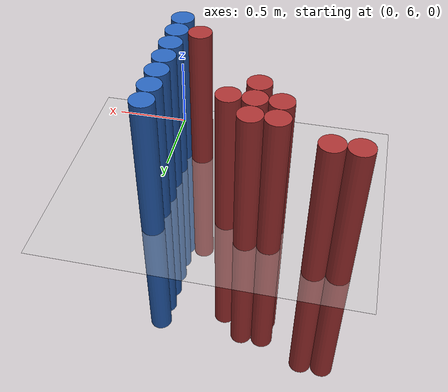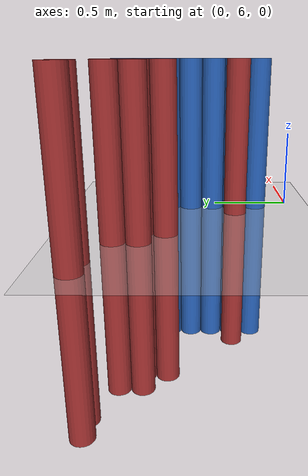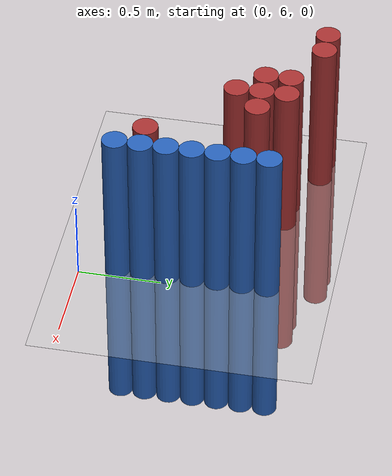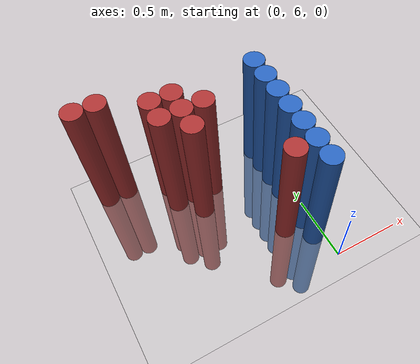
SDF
<sdf version="1.6">
 <world name="default">
  <model name="ground_plane">
   <static>1</static>
   <link name="link">
    <collision name="collision">
     <geometry><plane><normal>0 0 1</normal><size>100 100</size></plane></geometry>
     <surface><friction><ode><mu>100</mu><mu2>50</mu2></ode></friction></surface>
    </collision>
    <visual name="visual">
     <cast_shadows>0</cast_shadows>
     <geometry><plane><normal>0 0 1</normal><size>100 100</size></plane></geometry>
     <material>
      <script><uri>file://media/materials/scripts/gazebo.material</uri><name>Gazebo/Grey</name></script>
     </material>
    </visual>
   </link>
  </model>
  <model name="unit_cylinder_179">
   <static>1</static>
   <pose>-1.275000 7.275000 0.000000 0.000000 0.000000 0.000000</pose>
   <link name="link">
    <inertial>
     <mass>1</mass>
     <inertia><ixx>0.145833</ixx><ixy>0</ixy><ixz>0</ixz><iyy>0.145833</iyy><iyz>0</iyz><izz>0.125</izz></inertia>
    </inertial>
    <collision name="collision">
     <geometry><cylinder><radius>0.075000</radius><length>2</length></cylinder></geometry>
    </collision>
    <visual name="visual">
     <geometry><cylinder><radius>0.075000</radius><length>2</length></cylinder></geometry>
     <material>
      <ambient>0.648000 0.192000 0.192000 1</ambient>
      <diffuse>0.648000 0.192000 0.192000 1</diffuse>
     </material>
     <material>
      <script><name>Gazebo/Grey</name><uri>file://media/materials/scripts/gazebo.material</uri></script>
     </material>
    </visual>
   </link>
  </model>
  <model name="unit_cylinder_184">
   <static>1</static>
   <pose>-1.125000 7.275000 0.000000 0.000000 0.000000 0.000000</pose>
   <link name="link">
    <inertial>
     <mass>1</mass>
     <inertia><ixx>0.145833</ixx><ixy>0</ixy><ixz>0</ixz><iyy>0.145833</iyy><iyz>0</iyz><izz>0.125</izz></inertia>
    </inertial>
    <collision name="collision">
     <geometry><cylinder><radius>0.075000</radius><length>2</length></cylinder></geometry>
    </collision>
    <visual name="visual">
     <geometry><cylinder><radius>0.075000</radius><length>2</length></cylinder></geometry>
     <material>
      <ambient>0.648000 0.192000 0.192000 1</ambient>
      <diffuse>0.648000 0.192000 0.192000 1</diffuse>
     </material>
     <material>
      <script><name>Gazebo/Grey</name><uri>file://media/materials/scripts/gazebo.material</uri></script>
     </material>
    </visual>
   </link>
  </model>
  <model name="unit_cylinder_189">
   <static>1</static>
   <pose>-0.825000 6.975000 0.000000 0.000000 0.000000 0.000000</pose>
   <link name="link">
    <inertial>
     <mass>1</mass>
     <inertia><ixx>0.145833</ixx><ixy>0</ixy><ixz>0</ixz><iyy>0.145833</iyy><iyz>0</iyz><izz>0.125</izz></inertia>
    </inertial>
    <collision name="collision">
     <geometry><cylinder><radius>0.075000</radius><length>2</length></cylinder></geometry>
    </collision>
    <visual name="visual">
     <geometry><cylinder><radius>0.075000</radius><length>2</length></cylinder></geometry>
     <material>
      <ambient>0.648000 0.192000 0.192000 1</ambient>
      <diffuse>0.648000 0.192000 0.192000 1</diffuse>
     </material>
     <material>
      <script><name>Gazebo/Grey</name><uri>file://media/materials/scripts/gazebo.material</uri></script>
     </material>
    </visual>
   </link>
  </model>
  <model name="unit_cylinder_190">
   <static>1</static>
   <pose>-0.825000 7.125000 0.000000 0.000000 0.000000 0.000000</pose>
   <link name="link">
    <inertial>
     <mass>1</mass>
     <inertia><ixx>0.145833</ixx><ixy>0</ixy><ixz>0</ixz><iyy>0.145833</iyy><iyz>0</iyz><izz>0.125</izz></inertia>
    </inertial>
    <collision name="collision">
     <geometry><cylinder><radius>0.075000</radius><length>2</length></cylinder></geometry>
    </collision>
    <visual name="visual">
     <geometry><cylinder><radius>0.075000</radius><length>2</length></cylinder></geometry>
     <material>
      <ambient>0.648000 0.192000 0.192000 1</ambient>
      <diffuse>0.648000 0.192000 0.192000 1</diffuse>
     </material>
     <material>
      <script><name>Gazebo/Grey</name><uri>file://media/materials/scripts/gazebo.material</uri></script>
     </material>
    </visual>
   </link>
  </model>
  <model name="unit_cylinder_191">
   <static>1</static>
   <pose>-0.675000 6.825000 0.000000 0.000000 0.000000 0.000000</pose>
   <link name="link">
    <inertial>
     <mass>1</mass>
     <inertia><ixx>0.145833</ixx><ixy>0</ixy><ixz>0</ixz><iyy>0.145833</iyy><iyz>0</iyz><izz>0.125</izz></inertia>
    </inertial>
    <collision name="collision">
     <geometry><cylinder><radius>0.075000</radius><length>2</length></cylinder></geometry>
    </collision>
    <visual name="visual">
     <geometry><cylinder><radius>0.075000</radius><length>2</length></cylinder></geometry>
     <material>
      <ambient>0.648000 0.192000 0.192000 1</ambient>
      <diffuse>0.648000 0.192000 0.192000 1</diffuse>
     </material>
     <material>
      <script><name>Gazebo/Grey</name><uri>file://media/materials/scripts/gazebo.material</uri></script>
     </material>
    </visual>
   </link>
  </model>
  <model name="unit_cylinder_192">
   <static>1</static>
   <pose>-0.675000 6.975000 0.000000 0.000000 0.000000 0.000000</pose>
   <link name="link">
    <inertial>
     <mass>1</mass>
     <inertia><ixx>0.145833</ixx><ixy>0</ixy><ixz>0</ixz><iyy>0.145833</iyy><iyz>0</iyz><izz>0.125</izz></inertia>
    </inertial>
    <collision name="collision">
     <geometry><cylinder><radius>0.075000</radius><length>2</length></cylinder></geometry>
    </collision>
    <visual name="visual">
     <geometry><cylinder><radius>0.075000</radius><length>2</length></cylinder></geometry>
     <material>
      <ambient>0.648000 0.192000 0.192000 1</ambient>
      <diffuse>0.648000 0.192000 0.192000 1</diffuse>
     </material>
     <material>
      <script><name>Gazebo/Grey</name><uri>file://media/materials/scripts/gazebo.material</uri></script>
     </material>
    </visual>
   </link>
  </model>
  <model name="unit_cylinder_193">
   <static>1</static>
   <pose>-0.675000 7.125000 0.000000 0.000000 0.000000 0.000000</pose>
   <link name="link">
    <inertial>
     <mass>1</mass>
     <inertia><ixx>0.145833</ixx><ixy>0</ixy><ixz>0</ixz><iyy>0.145833</iyy><iyz>0</iyz><izz>0.125</izz></inertia>
    </inertial>
    <collision name="collision">
     <geometry><cylinder><radius>0.075000</radius><length>2</length></cylinder></geometry>
    </collision>
    <visual name="visual">
     <geometry><cylinder><radius>0.075000</radius><length>2</length></cylinder></geometry>
     <material>
      <ambient>0.648000 0.192000 0.192000 1</ambient>
      <diffuse>0.648000 0.192000 0.192000 1</diffuse>
     </material>
     <material>
      <script><name>Gazebo/Grey</name><uri>file://media/materials/scripts/gazebo.material</uri></script>
     </material>
    </visual>
   </link>
  </model>
  <model name="unit_cylinder_201">
   <static>1</static>
   <pose>-0.525000 6.975000 0.000000 0.000000 0.000000 0.000000</pose>
   <link name="link">
    <inertial>
     <mass>1</mass>
     <inertia><ixx>0.145833</ixx><ixy>0</ixy><ixz>0</ixz><iyy>0.145833</iyy><iyz>0</iyz><izz>0.125</izz></inertia>
    </inertial>
    <collision name="collision">
     <geometry><cylinder><radius>0.075000</radius><length>2</length></cylinder></geometry>
    </collision>
    <visual name="visual">
     <geometry><cylinder><radius>0.075000</radius><length>2</length></cylinder></geometry>
     <material>
      <ambient>0.648000 0.192000 0.192000 1</ambient>
      <diffuse>0.648000 0.192000 0.192000 1</diffuse>
     </material>
     <material>
      <script><name>Gazebo/Grey</name><uri>file://media/materials/scripts/gazebo.material</uri></script>
     </material>
    </visual>
   </link>
  </model>
  <model name="unit_cylinder_216">
   <static>1</static>
   <pose>-0.225000 6.375000 0.000000 0.000000 0.000000 0.000000</pose>
   <link name="link">
    <inertial>
     <mass>1</mass>
     <inertia><ixx>0.145833</ixx><ixy>0</ixy><ixz>0</ixz><iyy>0.145833</iyy><iyz>0</iyz><izz>0.125</izz></inertia>
    </inertial>
    <collision name="collision">
     <geometry><cylinder><radius>0.075000</radius><length>2</length></cylinder></geometry>
    </collision>
    <visual name="visual">
     <geometry><cylinder><radius>0.075000</radius><length>2</length></cylinder></geometry>
     <material>
      <ambient>0.648000 0.192000 0.192000 1</ambient>
      <diffuse>0.648000 0.192000 0.192000 1</diffuse>
     </material>
     <material>
      <script><name>Gazebo/Grey</name><uri>file://media/materials/scripts/gazebo.material</uri></script>
     </material>
    </visual>
   </link>
  </model>
  <model name="unit_cylinder_232">
   <static>1</static>
   <pose>-0.075000 6.225000 0.000000 0.000000 0.000000 0.000000</pose>
   <link name="link">
    <inertial>
     <mass>1</mass>
     <inertia><ixx>0.145833</ixx><ixy>0</ixy><ixz>0</ixz><iyy>0.145833</iyy><iyz>0</iyz><izz>0.125</izz></inertia>
    </inertial>
    <collision name="collision">
     <geometry><cylinder><radius>0.075000</radius><length>2</length></cylinder></geometry>
    </collision>
    <visual name="visual">
     <geometry><cylinder><radius>0.075000</radius><length>2</length></cylinder></geometry>
     <material>
      <ambient>0.152000 0.379000 0.720000 1</ambient>
      <diffuse>0.152000 0.379000 0.720000 1</diffuse>
     </material>
     <material>
      <script><name>Gazebo/Grey</name><uri>file://media/materials/scripts/gazebo.material</uri></script>
     </material>
    </visual>
   </link>
  </model>
  <model name="unit_cylinder_233">
   <static>1</static>
   <pose>-0.075000 6.375000 0.000000 0.000000 0.000000 0.000000</pose>
   <link name="link">
    <inertial>
     <mass>1</mass>
     <inertia><ixx>0.145833</ixx><ixy>0</ixy><ixz>0</ixz><iyy>0.145833</iyy><iyz>0</iyz><izz>0.125</izz></inertia>
    </inertial>
    <collision name="collision">
     <geometry><cylinder><radius>0.075000</radius><length>2</length></cylinder></geometry>
    </collision>
    <visual name="visual">
     <geometry><cylinder><radius>0.075000</radius><length>2</length></cylinder></geometry>
     <material>
      <ambient>0.152000 0.379000 0.720000 1</ambient>
      <diffuse>0.152000 0.379000 0.720000 1</diffuse>
     </material>
     <material>
      <script><name>Gazebo/Grey</name><uri>file://media/materials/scripts/gazebo.material</uri></script>
     </material>
    </visual>
   </link>
  </model>
  <model name="unit_cylinder_234">
   <static>1</static>
   <pose>-0.075000 6.525000 0.000000 0.000000 0.000000 0.000000</pose>
   <link name="link">
    <inertial>
     <mass>1</mass>
     <inertia><ixx>0.145833</ixx><ixy>0</ixy><ixz>0</ixz><iyy>0.145833</iyy><iyz>0</iyz><izz>0.125</izz></inertia>
    </inertial>
    <collision name="collision">
     <geometry><cylinder><radius>0.075000</radius><length>2</length></cylinder></geometry>
    </collision>
    <visual name="visual">
     <geometry><cylinder><radius>0.075000</radius><length>2</length></cylinder></geometry>
     <material>
      <ambient>0.152000 0.379000 0.720000 1</ambient>
      <diffuse>0.152000 0.379000 0.720000 1</diffuse>
     </material>
     <material>
      <script><name>Gazebo/Grey</name><uri>file://media/materials/scripts/gazebo.material</uri></script>
     </material>
    </visual>
   </link>
  </model>
  <model name="unit_cylinder_235">
   <static>1</static>
   <pose>-0.075000 6.675000 0.000000 0.000000 0.000000 0.000000</pose>
   <link name="link">
    <inertial>
     <mass>1</mass>
     <inertia><ixx>0.145833</ixx><ixy>0</ixy><ixz>0</ixz><iyy>0.145833</iyy><iyz>0</iyz><izz>0.125</izz></inertia>
    </inertial>
    <collision name="collision">
     <geometry><cylinder><radius>0.075000</radius><length>2</length></cylinder></geometry>
    </collision>
    <visual name="visual">
     <geometry><cylinder><radius>0.075000</radius><length>2</length></cylinder></geometry>
     <material>
      <ambient>0.152000 0.379000 0.720000 1</ambient>
      <diffuse>0.152000 0.379000 0.720000 1</diffuse>
     </material>
     <material>
      <script><name>Gazebo/Grey</name><uri>file://media/materials/scripts/gazebo.material</uri></script>
     </material>
    </visual>
   </link>
  </model>
  <model name="unit_cylinder_236">
   <static>1</static>
   <pose>-0.075000 6.825000 0.000000 0.000000 0.000000 0.000000</pose>
   <link name="link">
    <inertial>
     <mass>1</mass>
     <inertia><ixx>0.145833</ixx><ixy>0</ixy><ixz>0</ixz><iyy>0.145833</iyy><iyz>0</iyz><izz>0.125</izz></inertia>
    </inertial>
    <collision name="collision">
     <geometry><cylinder><radius>0.075000</radius><length>2</length></cylinder></geometry>
    </collision>
    <visual name="visual">
     <geometry><cylinder><radius>0.075000</radius><length>2</length></cylinder></geometry>
     <material>
      <ambient>0.152000 0.379000 0.720000 1</ambient>
      <diffuse>0.152000 0.379000 0.720000 1</diffuse>
     </material>
     <material>
      <script><name>Gazebo/Grey</name><uri>file://media/materials/scripts/gazebo.material</uri></script>
     </material>
    </visual>
   </link>
  </model>
  <model name="unit_cylinder_237">
   <static>1</static>
   <pose>-0.075000 6.975000 0.000000 0.000000 0.000000 0.000000</pose>
   <link name="link">
    <inertial>
     <mass>1</mass>
     <inertia><ixx>0.145833</ixx><ixy>0</ixy><ixz>0</ixz><iyy>0.145833</iyy><iyz>0</iyz><izz>0.125</izz></inertia>
    </inertial>
    <collision name="collision">
     <geometry><cylinder><radius>0.075000</radius><length>2</length></cylinder></geometry>
    </collision>
    <visual name="visual">
     <geometry><cylinder><radius>0.075000</radius><length>2</length></cylinder></geometry>
     <material>
      <ambient>0.152000 0.379000 0.720000 1</ambient>
      <diffuse>0.152000 0.379000 0.720000 1</diffuse>
     </material>
     <material>
      <script><name>Gazebo/Grey</name><uri>file://media/materials/scripts/gazebo.material</uri></script>
     </material>
    </visual>
   </link>
  </model>
  <model name="unit_cylinder_238">
   <static>1</static>
   <pose>-0.075000 7.125000 0.000000 0.000000 0.000000 0.000000</pose>
   <link name="link">
    <inertial>
     <mass>1</mass>
     <inertia><ixx>0.145833</ixx><ixy>0</ixy><ixz>0</ixz><iyy>0.145833</iyy><iyz>0</iyz><izz>0.125</izz></inertia>
    </inertial>
    <collision name="collision">
     <geometry><cylinder><radius>0.075000</radius><length>2</length></cylinder></geometry>
    </collision>
    <visual name="visual">
     <geometry><cylinder><radius>0.075000</radius><length>2</length></cylinder></geometry>
     <material>
      <ambient>0.152000 0.379000 0.720000 1</ambient>
      <diffuse>0.152000 0.379000 0.720000 1</diffuse>
     </material>
     <material>
      <script><name>Gazebo/Grey</name><uri>file://media/materials/scripts/gazebo.material</uri></script>
     </material>
    </visual>
   </link>
  </model>
 </world>
</sdf>
